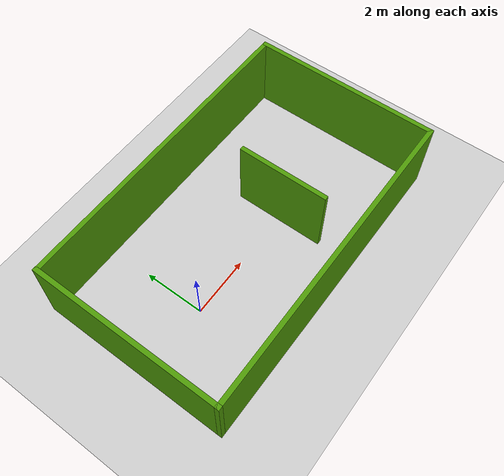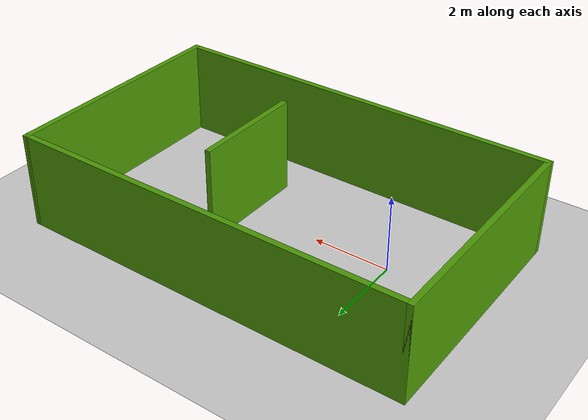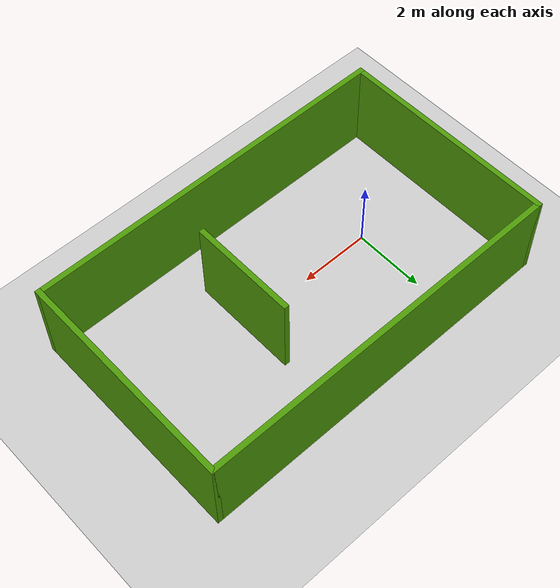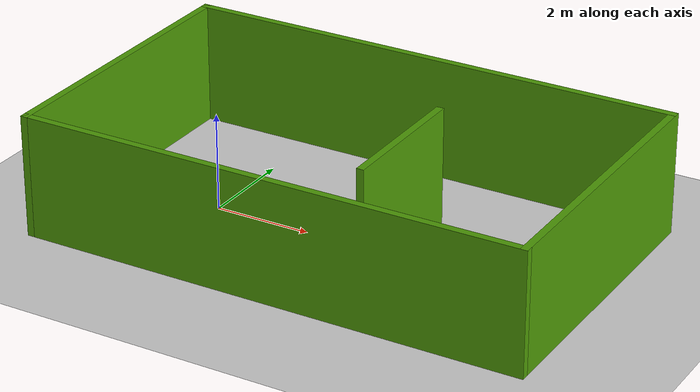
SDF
<sdf version="1.7">
 <world name="default">
  <light name="sun" type="directional">
   <pose>0 0 10 0 -0 0</pose>
   <diffuse>0.8 0.8 0.8 1</diffuse>
   <specular>0.2 0.2 0.2 1</specular>
   <attenuation>
    <range>1000</range>
    <constant>0.9</constant>
    <linear>0.01</linear>
    <quadratic>0.001</quadratic>
   </attenuation>
   <direction>-0.5 0.1 -0.9</direction>
   <spot><inner_angle>0</inner_angle><outer_angle>0</outer_angle><falloff>0</falloff></spot>
  </light>
  <model name="ground_plane">
   <static>1</static>
   <link name="link">
    <collision name="collision">
     <geometry><plane><normal>0 0 1</normal><size>100 100</size></plane></geometry>
     <surface>
      <contact><collide_bitmask>65535</collide_bitmask></contact>
      <friction><ode><mu>100</mu><mu2>50</mu2></ode></friction>
     </surface>
    </collision>
    <visual name="visual">
     <cast_shadows>0</cast_shadows>
     <geometry><plane><normal>0 0 1</normal><size>100 100</size></plane></geometry>
     <material>
      <script><uri>file://media/materials/scripts/gazebo.material</uri><name>Gazebo/Grey</name></script>
     </material>
    </visual>
   </link>
  </model>
  <gravity>0 0 -9.8</gravity>
  <magnetic_field>6e-06 2.3e-05 -4.2e-05</magnetic_field>
  <atmosphere type="adiabatic"/>
  <physics type="ode">
   <max_step_size>0.001</max_step_size>
   <real_time_factor>1</real_time_factor>
   <real_time_update_rate>1000</real_time_update_rate>
  </physics>
  <scene><ambient>0.4 0.4 0.4 1</ambient><background>0.7 0.7 0.7 1</background><shadows>1</shadows></scene>
  <spherical_coordinates>
   <surface_model>EARTH_WGS84</surface_model>
   <latitude_deg>0</latitude_deg>
   <longitude_deg>0</longitude_deg>
   <elevation>0</elevation>
   <heading_deg>0</heading_deg>
  </spherical_coordinates>
  <model name="my_world01">
   <pose>2.72811 0.366707 0 0 -0 0</pose>
   <link name="Wall_17">
    <collision name="Wall_17_Collision">
     <geometry><box><size>6.25 0.15 2.5</size></box></geometry>
     <pose>0 0 1.25 0 -0 0</pose>
    </collision>
    <visual name="Wall_17_Visual">
     <pose>0 0 1.25 0 -0 0</pose>
     <geometry><box><size>6.25 0.15 2.5</size></box></geometry>
     <material>
      <script><uri>file://media/materials/scripts/gazebo.material</uri><name>Gazebo/Grey</name></script>
      <ambient>0.305882 0.603922 0.0235294 1</ambient>
     </material>
     <meta><layer>0</layer></meta>
    </visual>
    <pose>-5.175 0 0 0 -0 1.5708</pose>
   </link>
   <link name="Wall_18">
    <collision name="Wall_18_Collision">
     <geometry><box><size>10.5 0.15 2.5</size></box></geometry>
     <pose>0 0 1.25 0 -0 0</pose>
    </collision>
    <visual name="Wall_18_Visual">
     <pose>0 0 1.25 0 -0 0</pose>
     <geometry><box><size>10.5 0.15 2.5</size></box></geometry>
     <material>
      <script><uri>file://media/materials/scripts/gazebo.material</uri><name>Gazebo/Grey</name></script>
      <ambient>0.305882 0.603922 0.0235294 1</ambient>
     </material>
     <meta><layer>0</layer></meta>
    </visual>
    <pose>0 3.05 0 0 -0 0</pose>
   </link>
   <link name="Wall_19">
    <collision name="Wall_19_Collision">
     <geometry><box><size>6.25 0.15 2.5</size></box></geometry>
     <pose>0 0 1.25 0 -0 0</pose>
    </collision>
    <visual name="Wall_19_Visual">
     <pose>0 0 1.25 0 -0 0</pose>
     <geometry><box><size>6.25 0.15 2.5</size></box></geometry>
     <material>
      <script><uri>file://media/materials/scripts/gazebo.material</uri><name>Gazebo/Grey</name></script>
      <ambient>0.305882 0.603922 0.0235294 1</ambient>
     </material>
     <meta><layer>0</layer></meta>
    </visual>
    <pose>5.175 0 0 0 -0 -1.5708</pose>
   </link>
   <link name="Wall_20">
    <collision name="Wall_20_Collision">
     <geometry><box><size>10.5 0.15 2.5</size></box></geometry>
     <pose>0 0 1.25 0 -0 0</pose>
    </collision>
    <visual name="Wall_20_Visual">
     <pose>0 0 1.25 0 -0 0</pose>
     <geometry><box><size>10.5 0.15 2.5</size></box></geometry>
     <material>
      <script><uri>file://media/materials/scripts/gazebo.material</uri><name>Gazebo/Grey</name></script>
      <ambient>0.305882 0.603922 0.0235294 1</ambient>
     </material>
     <meta><layer>0</layer></meta>
    </visual>
    <pose>0 -3.05 0 0 -0 3.14159</pose>
   </link>
   <link name="Wall_24">
    <collision name="Wall_24_Collision">
     <geometry><box><size>3 0.15 2.5</size></box></geometry>
     <pose>0 0 1.25 0 -0 0</pose>
    </collision>
    <visual name="Wall_24_Visual">
     <pose>0 0 1.25 0 -0 0</pose>
     <geometry><box><size>3 0.15 2.5</size></box></geometry>
     <material>
      <script><uri>file://media/materials/scripts/gazebo.material</uri><name>Gazebo/Grey</name></script>
      <ambient>0.305882 0.603922 0.0235294 1</ambient>
     </material>
     <meta><layer>0</layer></meta>
    </visual>
    <pose>1.30157 -0.377959 0 0 -0 1.5708</pose>
   </link>
   <static>1</static>
  </model>
 </world>
</sdf>
